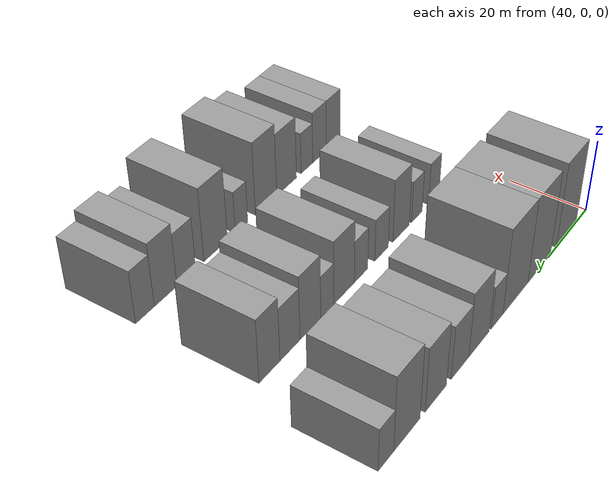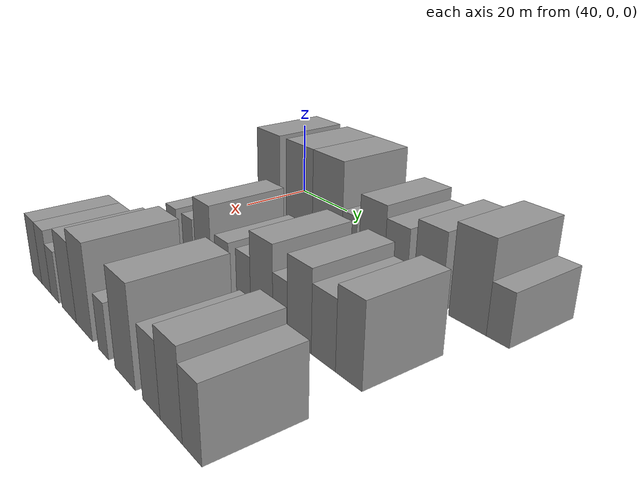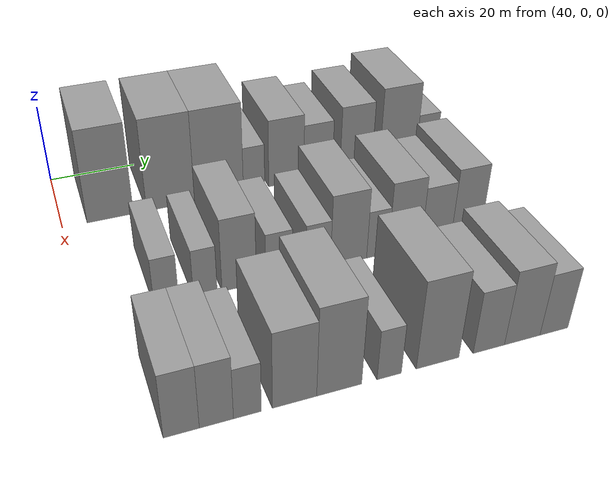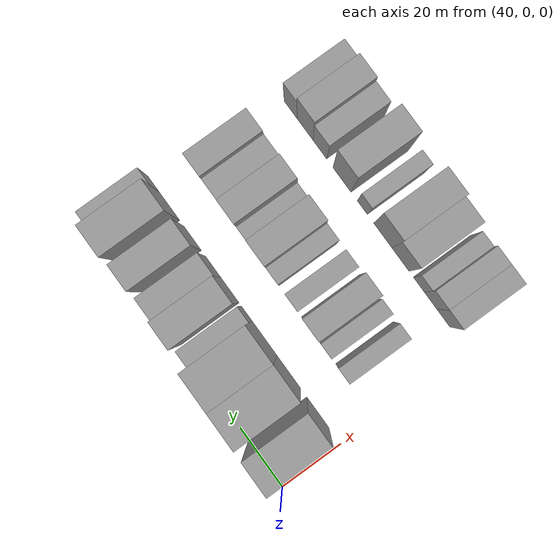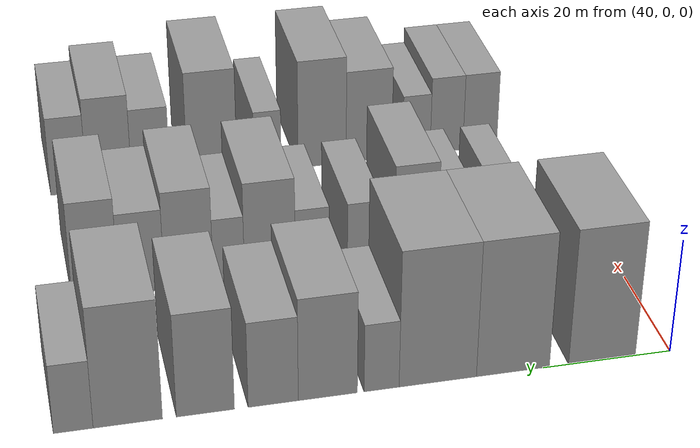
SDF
<sdf version="1.6">
 <world name="default">
  <model name="building_41">
   <static>1</static>
   <pose>50.0000 10.7805 0 0.000000 0.000000 0.000000</pose>
   <link name="link">
    <pose>0 0 12.00 0 0 0</pose>
    <collision name="collision"><geometry><box><size>20.0000 10.5251 24.0000</size></box></geometry></collision>
    <visual name="visual">
     <cast_shadows>0</cast_shadows>
     <geometry><box><size>20.0000 10.5251 24.0000</size></box></geometry>
     <material>
      <script>
       <uri>model://grey_wall/materials/scripts</uri>
       <uri>model://grey_wall/materials/textures</uri>
       <name>vrc/grey_wall</name>
      </script>
     </material>
    </visual>
   </link>
  </model>
  <model name="building_42">
   <static>1</static>
   <pose>50.0000 24.7000 0 0.000000 0.000000 0.000000</pose>
   <link name="link">
    <pose>0 0 12.00 0 0 0</pose>
    <collision name="collision"><geometry><box><size>20.0000 11.3139 24.0000</size></box></geometry></collision>
    <visual name="visual">
     <cast_shadows>0</cast_shadows>
     <geometry><box><size>20.0000 11.3139 24.0000</size></box></geometry>
     <material>
      <script>
       <uri>model://grey_wall/materials/scripts</uri>
       <uri>model://grey_wall/materials/textures</uri>
       <name>vrc/grey_wall</name>
      </script>
     </material>
    </visual>
   </link>
  </model>
  <model name="building_43">
   <static>1</static>
   <pose>50.0000 36.2653 0 0.000000 0.000000 0.000000</pose>
   <link name="link">
    <pose>0 0 12.00 0 0 0</pose>
    <collision name="collision"><geometry><box><size>20.0000 11.8165 24.0000</size></box></geometry></collision>
    <visual name="visual">
     <cast_shadows>0</cast_shadows>
     <geometry><box><size>20.0000 11.8165 24.0000</size></box></geometry>
     <material>
      <script>
       <uri>model://grey_wall/materials/scripts</uri>
       <uri>model://grey_wall/materials/textures</uri>
       <name>vrc/grey_wall</name>
      </script>
     </material>
    </visual>
   </link>
  </model>
  <model name="building_44">
   <static>1</static>
   <pose>50.0000 44.8143 0 0.000000 0.000000 0.000000</pose>
   <link name="link">
    <pose>0 0 6.00 0 0 0</pose>
    <collision name="collision"><geometry><box><size>20.0000 5.2817 12.0000</size></box></geometry></collision>
    <visual name="visual">
     <cast_shadows>0</cast_shadows>
     <geometry><box><size>20.0000 5.2817 12.0000</size></box></geometry>
     <material>
      <script>
       <uri>model://grey_wall/materials/scripts</uri>
       <uri>model://grey_wall/materials/textures</uri>
       <name>vrc/grey_wall</name>
      </script>
     </material>
    </visual>
   </link>
  </model>
  <model name="building_45">
   <static>1</static>
   <pose>50.0000 52.8690 0 0.000000 0.000000 0.000000</pose>
   <link name="link">
    <pose>0 0 9.00 0 0 0</pose>
    <collision name="collision"><geometry><box><size>20.0000 8.8278 18.0000</size></box></geometry></collision>
    <visual name="visual">
     <cast_shadows>0</cast_shadows>
     <geometry><box><size>20.0000 8.8278 18.0000</size></box></geometry>
     <material>
      <script>
       <uri>model://grey_wall/materials/scripts</uri>
       <uri>model://grey_wall/materials/textures</uri>
       <name>vrc/grey_wall</name>
      </script>
     </material>
    </visual>
   </link>
  </model>
  <model name="building_46">
   <static>1</static>
   <pose>50.0000 60.9933 0 0.000000 0.000000 0.000000</pose>
   <link name="link">
    <pose>0 0 7.50 0 0 0</pose>
    <collision name="collision"><geometry><box><size>20.0000 7.4207 15.0000</size></box></geometry></collision>
    <visual name="visual">
     <cast_shadows>0</cast_shadows>
     <geometry><box><size>20.0000 7.4207 15.0000</size></box></geometry>
     <material>
      <script>
       <uri>model://grey_wall/materials/scripts</uri>
       <uri>model://grey_wall/materials/textures</uri>
       <name>vrc/grey_wall</name>
      </script>
     </material>
    </visual>
   </link>
  </model>
  <model name="building_47">
   <static>1</static>
   <pose>50.0000 70.9440 0 0.000000 0.000000 0.000000</pose>
   <link name="link">
    <pose>0 0 9.00 0 0 0</pose>
    <collision name="collision"><geometry><box><size>20.0000 8.4807 18.0000</size></box></geometry></collision>
    <visual name="visual">
     <cast_shadows>0</cast_shadows>
     <geometry><box><size>20.0000 8.4807 18.0000</size></box></geometry>
     <material>
      <script>
       <uri>model://grey_wall/materials/scripts</uri>
       <uri>model://grey_wall/materials/textures</uri>
       <name>vrc/grey_wall</name>
      </script>
     </material>
    </visual>
   </link>
  </model>
  <model name="building_48">
   <static>1</static>
   <pose>50.0000 82.1688 0 0.000000 0.000000 0.000000</pose>
   <link name="link">
    <pose>0 0 10.50 0 0 0</pose>
    <collision name="collision"><geometry><box><size>20.0000 9.9690 21.0000</size></box></geometry></collision>
    <visual name="visual">
     <cast_shadows>0</cast_shadows>
     <geometry><box><size>20.0000 9.9690 21.0000</size></box></geometry>
     <material>
      <script>
       <uri>model://grey_wall/materials/scripts</uri>
       <uri>model://grey_wall/materials/textures</uri>
       <name>vrc/grey_wall</name>
      </script>
     </material>
    </visual>
   </link>
  </model>
  <model name="building_49">
   <static>1</static>
   <pose>50.0000 89.9884 0 0.000000 0.000000 0.000000</pose>
   <link name="link">
    <pose>0 0 6.00 0 0 0</pose>
    <collision name="collision"><geometry><box><size>20.0000 5.6702 12.0000</size></box></geometry></collision>
    <visual name="visual">
     <cast_shadows>0</cast_shadows>
     <geometry><box><size>20.0000 5.6702 12.0000</size></box></geometry>
     <material>
      <script>
       <uri>model://grey_wall/materials/scripts</uri>
       <uri>model://grey_wall/materials/textures</uri>
       <name>vrc/grey_wall</name>
      </script>
     </material>
    </visual>
   </link>
  </model>
  <model name="building_124">
   <static>1</static>
   <pose>82.0000 16.2486 0 0.000000 0.000000 0.000000</pose>
   <link name="link">
    <pose>0 0 6.00 0 0 0</pose>
    <collision name="collision"><geometry><box><size>20.0000 5.0421 12.0000</size></box></geometry></collision>
    <visual name="visual">
     <cast_shadows>0</cast_shadows>
     <geometry><box><size>20.0000 5.0421 12.0000</size></box></geometry>
     <material>
      <script>
       <uri>model://grey_wall/materials/scripts</uri>
       <uri>model://grey_wall/materials/textures</uri>
       <name>vrc/grey_wall</name>
      </script>
     </material>
    </visual>
   </link>
  </model>
  <model name="building_125">
   <static>1</static>
   <pose>82.0000 24.2443 0 0.000000 0.000000 0.000000</pose>
   <link name="link">
    <pose>0 0 6.00 0 0 0</pose>
    <collision name="collision"><geometry><box><size>20.0000 4.9494 12.0000</size></box></geometry></collision>
    <visual name="visual">
     <cast_shadows>0</cast_shadows>
     <geometry><box><size>20.0000 4.9494 12.0000</size></box></geometry>
     <material>
      <script>
       <uri>model://grey_wall/materials/scripts</uri>
       <uri>model://grey_wall/materials/textures</uri>
       <name>vrc/grey_wall</name>
      </script>
     </material>
    </visual>
   </link>
  </model>
  <model name="building_126">
   <static>1</static>
   <pose>82.0000 31.3654 0 0.000000 0.000000 0.000000</pose>
   <link name="link">
    <pose>0 0 9.00 0 0 0</pose>
    <collision name="collision"><geometry><box><size>20.0000 7.2928 18.0000</size></box></geometry></collision>
    <visual name="visual">
     <cast_shadows>0</cast_shadows>
     <geometry><box><size>20.0000 7.2928 18.0000</size></box></geometry>
     <material>
      <script>
       <uri>model://grey_wall/materials/scripts</uri>
       <uri>model://grey_wall/materials/textures</uri>
       <name>vrc/grey_wall</name>
      </script>
     </material>
    </visual>
   </link>
  </model>
  <model name="building_127">
   <static>1</static>
   <pose>82.0000 39.8989 0 0.000000 0.000000 0.000000</pose>
   <link name="link">
    <pose>0 0 6.00 0 0 0</pose>
    <collision name="collision"><geometry><box><size>20.0000 5.7742 12.0000</size></box></geometry></collision>
    <visual name="visual">
     <cast_shadows>0</cast_shadows>
     <geometry><box><size>20.0000 5.7742 12.0000</size></box></geometry>
     <material>
      <script>
       <uri>model://grey_wall/materials/scripts</uri>
       <uri>model://grey_wall/materials/textures</uri>
       <name>vrc/grey_wall</name>
      </script>
     </material>
    </visual>
   </link>
  </model>
  <model name="building_128">
   <static>1</static>
   <pose>82.0000 48.5575 0 0.000000 0.000000 0.000000</pose>
   <link name="link">
    <pose>0 0 6.00 0 0 0</pose>
    <collision name="collision"><geometry><box><size>20.0000 5.5428 12.0000</size></box></geometry></collision>
    <visual name="visual">
     <cast_shadows>0</cast_shadows>
     <geometry><box><size>20.0000 5.5428 12.0000</size></box></geometry>
     <material>
      <script>
       <uri>model://grey_wall/materials/scripts</uri>
       <uri>model://grey_wall/materials/textures</uri>
       <name>vrc/grey_wall</name>
      </script>
     </material>
    </visual>
   </link>
  </model>
  <model name="building_129">
   <static>1</static>
   <pose>82.0000 55.4622 0 0.000000 0.000000 0.000000</pose>
   <link name="link">
    <pose>0 0 9.00 0 0 0</pose>
    <collision name="collision"><geometry><box><size>20.0000 8.2667 18.0000</size></box></geometry></collision>
    <visual name="visual">
     <cast_shadows>0</cast_shadows>
     <geometry><box><size>20.0000 8.2667 18.0000</size></box></geometry>
     <material>
      <script>
       <uri>model://grey_wall/materials/scripts</uri>
       <uri>model://grey_wall/materials/textures</uri>
       <name>vrc/grey_wall</name>
      </script>
     </material>
    </visual>
   </link>
  </model>
  <model name="building_130">
   <static>1</static>
   <pose>82.0000 62.1192 0 0.000000 0.000000 0.000000</pose>
   <link name="link">
    <pose>0 0 6.00 0 0 0</pose>
    <collision name="collision"><geometry><box><size>20.0000 5.0472 12.0000</size></box></geometry></collision>
    <visual name="visual">
     <cast_shadows>0</cast_shadows>
     <geometry><box><size>20.0000 5.0472 12.0000</size></box></geometry>
     <material>
      <script>
       <uri>model://grey_wall/materials/scripts</uri>
       <uri>model://grey_wall/materials/textures</uri>
       <name>vrc/grey_wall</name>
      </script>
     </material>
    </visual>
   </link>
  </model>
  <model name="building_131">
   <static>1</static>
   <pose>82.0000 68.5437 0 0.000000 0.000000 0.000000</pose>
   <link name="link">
    <pose>0 0 9.00 0 0 0</pose>
    <collision name="collision"><geometry><box><size>20.0000 7.8018 18.0000</size></box></geometry></collision>
    <visual name="visual">
     <cast_shadows>0</cast_shadows>
     <geometry><box><size>20.0000 7.8018 18.0000</size></box></geometry>
     <material>
      <script>
       <uri>model://grey_wall/materials/scripts</uri>
       <uri>model://grey_wall/materials/textures</uri>
       <name>vrc/grey_wall</name>
      </script>
     </material>
    </visual>
   </link>
  </model>
  <model name="building_132">
   <static>1</static>
   <pose>82.0000 76.0768 0 0.000000 0.000000 0.000000</pose>
   <link name="link">
    <pose>0 0 7.50 0 0 0</pose>
    <collision name="collision"><geometry><box><size>20.0000 7.2645 15.0000</size></box></geometry></collision>
    <visual name="visual">
     <cast_shadows>0</cast_shadows>
     <geometry><box><size>20.0000 7.2645 15.0000</size></box></geometry>
     <material>
      <script>
       <uri>model://grey_wall/materials/scripts</uri>
       <uri>model://grey_wall/materials/textures</uri>
       <name>vrc/grey_wall</name>
      </script>
     </material>
    </visual>
   </link>
  </model>
  <model name="building_133">
   <static>1</static>
   <pose>82.0000 83.4015 0 0.000000 0.000000 0.000000</pose>
   <link name="link">
    <pose>0 0 9.00 0 0 0</pose>
    <collision name="collision"><geometry><box><size>20.0000 7.3848 18.0000</size></box></geometry></collision>
    <visual name="visual">
     <cast_shadows>0</cast_shadows>
     <geometry><box><size>20.0000 7.3848 18.0000</size></box></geometry>
     <material>
      <script>
       <uri>model://grey_wall/materials/scripts</uri>
       <uri>model://grey_wall/materials/textures</uri>
       <name>vrc/grey_wall</name>
      </script>
     </material>
    </visual>
   </link>
  </model>
  <model name="building_200">
   <static>1</static>
   <pose>114.0000 11.3408 0 0.000000 0.000000 0.000000</pose>
   <link name="link">
    <pose>0 0 7.50 0 0 0</pose>
    <collision name="collision"><geometry><box><size>20.0000 6.2617 15.0000</size></box></geometry></collision>
    <visual name="visual">
     <cast_shadows>0</cast_shadows>
     <geometry><box><size>20.0000 6.2617 15.0000</size></box></geometry>
     <material>
      <script>
       <uri>model://grey_wall/materials/scripts</uri>
       <uri>model://grey_wall/materials/textures</uri>
       <name>vrc/grey_wall</name>
      </script>
     </material>
    </visual>
   </link>
  </model>
  <model name="building_201">
   <static>1</static>
   <pose>114.0000 17.4911 0 0.000000 0.000000 0.000000</pose>
   <link name="link">
    <pose>0 0 7.50 0 0 0</pose>
    <collision name="collision"><geometry><box><size>20.0000 6.0389 15.0000</size></box></geometry></collision>
    <visual name="visual">
     <cast_shadows>0</cast_shadows>
     <geometry><box><size>20.0000 6.0389 15.0000</size></box></geometry>
     <material>
      <script>
       <uri>model://grey_wall/materials/scripts</uri>
       <uri>model://grey_wall/materials/textures</uri>
       <name>vrc/grey_wall</name>
      </script>
     </material>
    </visual>
   </link>
  </model>
  <model name="building_202">
   <static>1</static>
   <pose>114.0000 23.0313 0 0.000000 0.000000 0.000000</pose>
   <link name="link">
    <pose>0 0 6.00 0 0 0</pose>
    <collision name="collision"><geometry><box><size>20.0000 5.0417 12.0000</size></box></geometry></collision>
    <visual name="visual">
     <cast_shadows>0</cast_shadows>
     <geometry><box><size>20.0000 5.0417 12.0000</size></box></geometry>
     <material>
      <script>
       <uri>model://grey_wall/materials/scripts</uri>
       <uri>model://grey_wall/materials/textures</uri>
       <name>vrc/grey_wall</name>
      </script>
     </material>
    </visual>
   </link>
  </model>
  <model name="building_203">
   <static>1</static>
   <pose>114.0000 31.6818 0 0.000000 0.000000 0.000000</pose>
   <link name="link">
    <pose>0 0 9.00 0 0 0</pose>
    <collision name="collision"><geometry><box><size>20.0000 8.2593 18.0000</size></box></geometry></collision>
    <visual name="visual">
     <cast_shadows>0</cast_shadows>
     <geometry><box><size>20.0000 8.2593 18.0000</size></box></geometry>
     <material>
      <script>
       <uri>model://grey_wall/materials/scripts</uri>
       <uri>model://grey_wall/materials/textures</uri>
       <name>vrc/grey_wall</name>
      </script>
     </material>
    </visual>
   </link>
  </model>
  <model name="building_204">
   <static>1</static>
   <pose>114.0000 40.1330 0 0.000000 0.000000 0.000000</pose>
   <link name="link">
    <pose>0 0 10.50 0 0 0</pose>
    <collision name="collision"><geometry><box><size>20.0000 8.6431 21.0000</size></box></geometry></collision>
    <visual name="visual">
     <cast_shadows>0</cast_shadows>
     <geometry><box><size>20.0000 8.6431 21.0000</size></box></geometry>
     <material>
      <script>
       <uri>model://grey_wall/materials/scripts</uri>
       <uri>model://grey_wall/materials/textures</uri>
       <name>vrc/grey_wall</name>
      </script>
     </material>
    </visual>
   </link>
  </model>
  <model name="building_205">
   <static>1</static>
   <pose>114.0000 49.8722 0 0.000000 0.000000 0.000000</pose>
   <link name="link">
    <pose>0 0 6.00 0 0 0</pose>
    <collision name="collision"><geometry><box><size>20.0000 4.8351 12.0000</size></box></geometry></collision>
    <visual name="visual">
     <cast_shadows>0</cast_shadows>
     <geometry><box><size>20.0000 4.8351 12.0000</size></box></geometry>
     <material>
      <script>
       <uri>model://grey_wall/materials/scripts</uri>
       <uri>model://grey_wall/materials/textures</uri>
       <name>vrc/grey_wall</name>
      </script>
     </material>
    </visual>
   </link>
  </model>
  <model name="building_206">
   <static>1</static>
   <pose>114.0000 59.6659 0 0.000000 0.000000 0.000000</pose>
   <link name="link">
    <pose>0 0 10.50 0 0 0</pose>
    <collision name="collision"><geometry><box><size>20.0000 8.7523 21.0000</size></box></geometry></collision>
    <visual name="visual">
     <cast_shadows>0</cast_shadows>
     <geometry><box><size>20.0000 8.7523 21.0000</size></box></geometry>
     <material>
      <script>
       <uri>model://grey_wall/materials/scripts</uri>
       <uri>model://grey_wall/materials/textures</uri>
       <name>vrc/grey_wall</name>
      </script>
     </material>
    </visual>
   </link>
  </model>
  <model name="building_207">
   <static>1</static>
   <pose>114.0000 70.3696 0 0.000000 0.000000 0.000000</pose>
   <link name="link">
    <pose>0 0 7.50 0 0 0</pose>
    <collision name="collision"><geometry><box><size>20.0000 6.6551 15.0000</size></box></geometry></collision>
    <visual name="visual">
     <cast_shadows>0</cast_shadows>
     <geometry><box><size>20.0000 6.6551 15.0000</size></box></geometry>
     <material>
      <script>
       <uri>model://grey_wall/materials/scripts</uri>
       <uri>model://grey_wall/materials/textures</uri>
       <name>vrc/grey_wall</name>
      </script>
     </material>
    </visual>
   </link>
  </model>
  <model name="building_208">
   <static>1</static>
   <pose>114.0000 77.5709 0 0.000000 0.000000 0.000000</pose>
   <link name="link">
    <pose>0 0 9.00 0 0 0</pose>
    <collision name="collision"><geometry><box><size>20.0000 7.7475 18.0000</size></box></geometry></collision>
    <visual name="visual">
     <cast_shadows>0</cast_shadows>
     <geometry><box><size>20.0000 7.7475 18.0000</size></box></geometry>
     <material>
      <script>
       <uri>model://grey_wall/materials/scripts</uri>
       <uri>model://grey_wall/materials/textures</uri>
       <name>vrc/grey_wall</name>
      </script>
     </material>
    </visual>
   </link>
  </model>
  <model name="building_209">
   <static>1</static>
   <pose>114.0000 84.5567 0 0.000000 0.000000 0.000000</pose>
   <link name="link">
    <pose>0 0 7.50 0 0 0</pose>
    <collision name="collision"><geometry><box><size>20.0000 6.2241 15.0000</size></box></geometry></collision>
    <visual name="visual">
     <cast_shadows>0</cast_shadows>
     <geometry><box><size>20.0000 6.2241 15.0000</size></box></geometry>
     <material>
      <script>
       <uri>model://grey_wall/materials/scripts</uri>
       <uri>model://grey_wall/materials/textures</uri>
       <name>vrc/grey_wall</name>
      </script>
     </material>
    </visual>
   </link>
  </model>
 </world>
</sdf>
